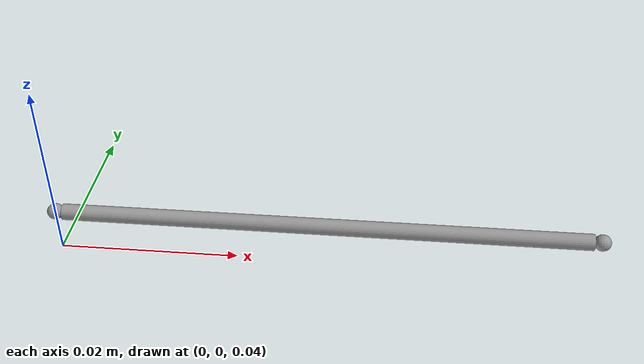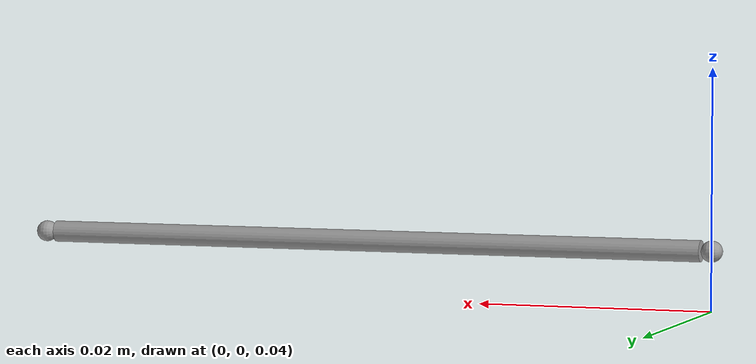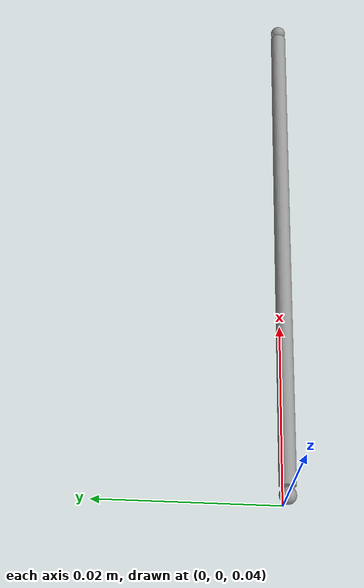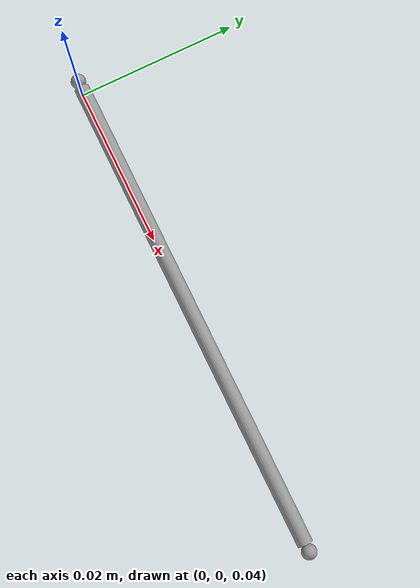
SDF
<?xml version="1.0" ?>
<sdf version='1.7'>
<model name="cable_modelB">
  <link name="segment_1_sphere">
    <pose>0 0 0.045 1.57 -0 -1.57</pose>
    <inertial>
      <pose>0 0 0 0 -0 0</pose>
      <mass>0.0025</mass>
      <inertia>
        <ixx>0.000001</ixx>
        <ixy>0</ixy>
        <ixz>0</ixz>
        <iyy>0.000001</iyy>
        <iyz>0</iyz>
        <izz>0.000001</izz>
      </inertia>
    </inertial>
    <collision name="segment_1_sphere_collision">
      <pose>0 0 0 0 -0 0</pose>
      <geometry>
        <sphere>
          <radius>0.0009</radius>
        </sphere>
      </geometry>
      <surface>
        <friction>
          <ode>
            <mu>0.001</mu>
            <mu2>0.001</mu2>
          </ode>
        </friction>
      </surface>
    </collision>
    <visual name="segment_1_sphere_visual">
      <pose>0 0 0 0 -0 0</pose>
      <geometry>
        <sphere>
          <radius>0.0009</radius>
        </sphere>
      </geometry>
      <material>
        <script>
          <name>Gazebo/Gray</name>
          <uri>file://media/materials/scripts/gazebo.material</uri>
        </script>
      </material>
    </visual>
    <self_collide>1</self_collide>
  </link>
  <joint name="segment_1_sphere_to_cylinder" type="ball">
    <pose relative_to="segment_1_sphere">0 0 0 0 -0 0</pose>
    <parent>segment_1_sphere</parent>
    <child>segment_1_cylinder</child>
    <axis>
      <xyz>1 0 0</xyz>
      <limit>
        <lower>-3.14</lower>
        <upper>3.14</upper>
        <effort>10</effort>
        <velocity>3</velocity>
      </limit>
      <dynamics>
        <damping>0.1</damping>
        <friction>0</friction>
        <spring_reference>0</spring_reference>
        <spring_stiffness>0</spring_stiffness>
      </dynamics>
    </axis>
  </joint>
  <link name="segment_1_cylinder">
    <pose relative_to="segment_1_sphere_to_cylinder">0 0 0 0 -0 0</pose>
    <inertial>
      <pose>0 0 -0.0297 0 -0 0</pose>
      <mass>0.025</mass>
      <inertia>
        <ixx>0.00001</ixx>
        <ixy>0</ixy>
        <ixz>0</ixz>
        <iyy>0.00001</iyy>
        <iyz>0</iyz>
        <izz>0.00001</izz>
      </inertia>
    </inertial>
    <collision name="segment_1_cylinder_collision">
      <pose>0 0 -0.0297 0 -0 0</pose>
      <geometry>
        <cylinder>
          <length>0.0576</length>
          <radius>0.0009</radius>
        </cylinder>
      </geometry>
      <surface>
        <friction>
          <ode>
            <mu>0.001</mu>
            <mu2>0.001</mu2>
          </ode>
        </friction>
      </surface>
    </collision>
    <visual name="segment_1_cylinder_visual">
      <pose>0 0 -0.0297 0 -0 0</pose>
      <geometry>
        <cylinder>
          <length>0.0576</length>
          <radius>0.0009</radius>
        </cylinder>
      </geometry>
      <material>
        <script>
          <name>Gazebo/Gray</name>
          <uri>file://media/materials/scripts/gazebo.material</uri>
        </script>
      </material>
    </visual>
    <self_collide>1</self_collide>
  </link>
  <joint name="joint_end_sphere" type="ball">
    <pose relative_to="segment_1_cylinder">0 0 -0.0594 0 -0 0</pose>
    <parent>segment_1_cylinder</parent>
    <child>end_sphere</child>
    <axis>
      <xyz>0 1 0</xyz>
      <limit>
        <lower>-1.57</lower>
        <upper>1.57</upper>
        <effort>10</effort>
        <velocity>3</velocity>
      </limit>
      <dynamics>
        <damping>0.1</damping>
        <friction>0</friction>
        <spring_reference>0</spring_reference>
        <spring_stiffness>0</spring_stiffness>
      </dynamics>
    </axis>
  </joint>
  <link name="end_sphere">
    <pose relative_to="joint_end_sphere">0 0 0 0 -0 0</pose>
    <inertial>
      <pose>0 0 0 0 -0 0</pose>
      <mass>0.0025</mass>
      <inertia>
        <ixx>0.000001</ixx>
        <ixy>0</ixy>
        <ixz>0</ixz>
        <iyy>0.000001</iyy>
        <iyz>0</iyz>
        <izz>0.000001</izz>
      </inertia>
    </inertial>
    <collision name="end_sphere_collision">
      <pose>0 0 0 0 -0 0</pose>
      <geometry>
        <sphere>
          <radius>0.0009</radius>
        </sphere>
      </geometry>
      <surface>
        <friction>
          <ode>
            <mu>0.001</mu>
            <mu2>0.001</mu2>
          </ode>
        </friction>
      </surface>
    </collision>
    <visual name="end_sphere_visual">
      <pose>0 0 0 0 -0 0</pose>
      <geometry>
        <sphere>
          <radius>0.0009</radius>
        </sphere>
      </geometry>
      <material>
        <script>
          <name>Gazebo/Gray</name>
          <uri>file://media/materials/scripts/gazebo.material</uri>
        </script>
      </material>
    </visual>
  </link>
  <self_collide>1</self_collide>
</model>
</sdf>
